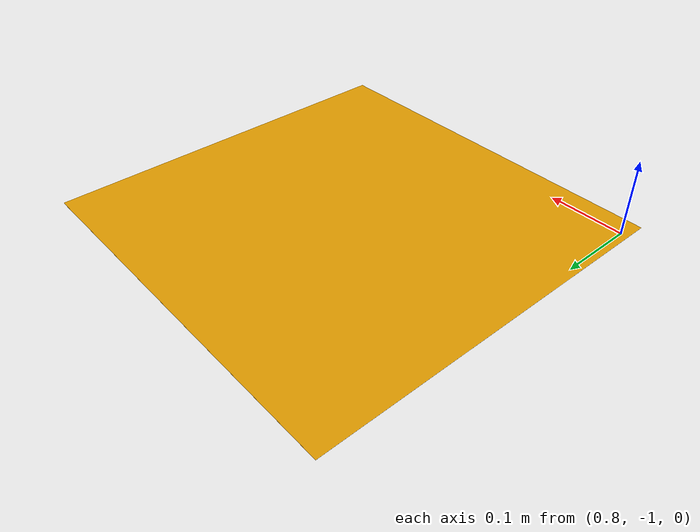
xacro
<?xml version="1.0"?>

<robot name="edufill_S2">

<xacro:macro name="edufill_S2" params="name">

	<link name="edufill_S2">
    		<inertial>
      			<origin xyz="1.041 -0.779 0" />
      			<mass value="10.0" />
      			<inertia  ixx="1.0" ixy="0.0"  ixz="0.0"  iyy="1.0"  iyz="0.0"  izz="1.0" />
    		</inertial>
    		<visual>
      			<origin xyz="1.041 -0.779 0"/>
      			<geometry>
        			<box size="0.5 0.5 0.0001" />
      			</geometry>
			<material name="surface">
				<texture filename="package://edufill_gazebo_world/common/worlds/S2.jpg"/>
			</material>
    		</visual>
    		<collision>
      			<origin xyz="1.041 -0.779 0"/>
      		<geometry>
        		<box size="0.5 0.5 0.0001" />
      		</geometry>
    		</collision>
  	</link>

</xacro:macro>

<xacro:edufill_S2 name="edufill_S2" />
</robot>
